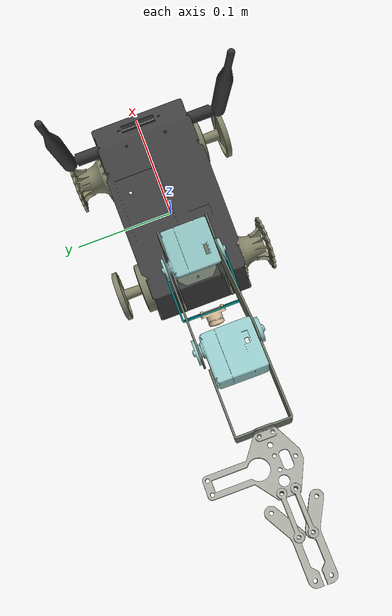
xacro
<?xml version='1.0' encoding='utf-8'?>
<robot xmlns:xacro="http://www.ros.org/wiki/xacro" name="jetank">

    <!-- ================= ARGUMENTS  ================== -->
    <xacro:arg name="namespace" default="jetank" />
    <!-- ================= PROPERTIES ================== -->

    <!-- constants -->
    <xacro:property name="PI" value="3.1415" />
    <xacro:property name="scale" value="0.001 0.001 0.001" />

    <!-- meshes -->
    <xacro:property name="base_link_mesh"               value="file://$(find jetank_description)/meshes/base_link.stl" />
    <xacro:property name="DRIVER_WHEEL_L_mesh"          value="file://$(find jetank_description)/meshes/DRIVER_WHEEL_L.stl" />
    <xacro:property name="DRIVER_WHEEL_R_mesh"          value="file://$(find jetank_description)/meshes/DRIVER_WHEEL_R.stl" />
    <xacro:property name="FREE_WHEEL_L_mesh"            value="file://$(find jetank_description)/meshes/FREE_WHEEL_L.stl" />
    <xacro:property name="FREE_WHEEL_R_mesh"            value="file://$(find jetank_description)/meshes/FREE_WHEEL_R.stl" />
    <xacro:property name="ARM_UPPER_mesh"               value="file://$(find jetank_description)/meshes/ARM_UPPER.stl" />
    <xacro:property name="ARM_MIDDLE_mesh"              value="file://$(find jetank_description)/meshes/ARM_MIDDLE.stl" />
    <xacro:property name="ARM_LOWER_mesh"               value="file://$(find jetank_description)/meshes/ARM_LOWER.stl" />
    <xacro:property name="ANTENNA_R_mesh"               value="file://$(find jetank_description)/meshes/ANTENNA_R.stl" />
    <xacro:property name="ANTENNA_L_mesh"               value="file://$(find jetank_description)/meshes/ANTENNA_L.stl" />
    <xacro:property name="GRIPPER_BASE_mesh"            value="file://$(find jetank_description)/meshes/GRIPPER_BASE.stl" />
    <xacro:property name="GRIPPER_L1_mesh"              value="file://$(find jetank_description)/meshes/GRIPPER_L1.stl" />
    <xacro:property name="GRIPPER_L2_mesh"              value="file://$(find jetank_description)/meshes/GRIPPER_L2.stl" />
    <xacro:property name="GRIPPER_R1_mesh"              value="file://$(find jetank_description)/meshes/GRIPPER_R1.stl" />
    <xacro:property name="GRIPPER_R2_mesh"              value="file://$(find jetank_description)/meshes/GRIPPER_R2.stl" />
    <xacro:property name="SERVO_UPPER_mesh"             value="file://$(find jetank_description)/meshes/SERVO_UPPER.stl" />
    <xacro:property name="SERVO_LOWER_mesh"             value="file://$(find jetank_description)/meshes/SERVO_LOWER.stl" />
    <xacro:property name="CATERPILLAR_TRACER_L_mesh"    value="file://$(find jetank_description)/meshes/CATERPILLAR_TRACER_L.stl" />
    <xacro:property name="CAMERA_mesh"                  value="file://$(find jetank_description)/meshes/CAMERA.stl" />
    <xacro:property name="CAMERA_HOLDER_mesh"           value="file://$(find jetank_description)/meshes/CAM_HOLDER.stl" />
    <xacro:property name="BEARING_mesh"                 value="file://$(find jetank_description)/meshes/BEARING.stl" />

    <!-- materials -->
    <!-- format: [red green blue alpha] -->
    <xacro:property name="base_link_material"               value="0.25 0.25 0.25 1" />
    <xacro:property name="DRIVER_WHEEL_L_material"          value="0.5 0.5 0.4 1" />
    <xacro:property name="DRIVER_WHEEL_R_material"          value="0.5 0.5 0.4 1" />
    <xacro:property name="FREE_WHEEL_L_material"            value="0.5 0.5 0.4 1" />
    <xacro:property name="FREE_WHEEL_R_material"            value="0.5 0.5 0.4 1" />
    <xacro:property name="ARM_UPPER_material"               value="0.41 0.45 0.39 1" />
    <xacro:property name="ARM_MIDDLE_material"              value="0.41 0.45 0.39 1" />
    <xacro:property name="ARM_LOWER_material"               value="0.41 0.45 0.39 1" />
    <xacro:property name="ANTENNA_R_material"               value="0.2 0.2 0.2 1" />
    <xacro:property name="ANTENNA_L_material"               value="0.2 0.2 0.2 1" />
    <xacro:property name="GRIPPER_BASE_material"            value="0.65 0.65 0.62 1" />
    <xacro:property name="GRIPPER_L1_material"              value="0.65 0.65 0.62 1" />
    <xacro:property name="GRIPPER_L2_material"              value="0.65 0.65 0.62 1" />
    <xacro:property name="GRIPPER_R1_material"              value="0.65 0.65 0.62 1" />
    <xacro:property name="GRIPPER_R2_material"              value="0.65 0.65 0.62 1" />
    <xacro:property name="SERVO_UPPER_material"             value="0.58 0.78 0.78 1" />
    <xacro:property name="SERVO_LOWER_material"             value="0.58 0.78 0.78 1" />
    <xacro:property name="CATERPILLAR_TRACER_L_material"    value="0 0 0 0" />
    <xacro:property name="CAMERA_material"                  value="0.84 0.74 0.60 1" />
    <xacro:property name="CAMERA_HOLDER_material"           value="0.0 0.5 0.5 1" />
    <xacro:property name="BEARING_material"                 value="0.67 0.74 0.67 1" />

    <!-- mass -->
    <xacro:property name="base_link_mass"               value="0.7639308708503839" />
    <xacro:property name="DRIVER_WHEEL_L_mass"          value="0.1049698213829899" />
    <xacro:property name="DRIVER_WHEEL_R_mass"          value="0.1049698213829899" />
    <xacro:property name="FREE_WHEEL_L_mass"            value="0.1148888948541452" />
    <xacro:property name="FREE_WHEEL_R_mass"            value="0.1148888948541518" />
    <xacro:property name="ARM_UPPER_mass"               value="0.0356576139610492" />
    <xacro:property name="ARM_MIDDLE_mass"              value="0.0618639746492046" />
    <xacro:property name="ARM_LOWER_mass"               value="0.1036438493797283" />
    <xacro:property name="ANTENNA_R_mass"               value="0.1712590340150528" />
    <xacro:property name="ANTENNA_L_mass"               value="0.1712590340150529" />
    <xacro:property name="GRIPPER_BASE_mass"            value="0.0366550366587098" />
    <xacro:property name="GRIPPER_L1_mass"              value="0.0062442558314246" />
    <xacro:property name="GRIPPER_L2_mass"              value="0.0214602758599241" />
    <xacro:property name="GRIPPER_R1_mass"              value="0.0062442558314246" />
    <xacro:property name="GRIPPER_R2_mass"              value="0.0214602758599390" />
    <xacro:property name="SERVO_UPPER_mass"             value="0.2098216132647201" />
    <xacro:property name="SERVO_LOWER_mass"             value="0.2098216132647196" />
    <xacro:property name="CATERPILLAR_TRACER_L_mass"    value="0" />
    <xacro:property name="CAMERA_mass"                  value="0.0191770974259580" />
    <xacro:property name="CAMERA_HOLDER_mass"           value="0.0432050856643130" />
    <xacro:property name="BEARING_mass"                 value="0.0558921120705775" />

    <!-- link_type -->
    <xacro:property name="base_link_link_type"          value="box"/>
    <xacro:property name="ARM_UPPER_link_type"          value="box"/>
    <xacro:property name="ARM_MIDDLE_link_type"         value="box"/>
    <xacro:property name="ARM_LOWER_link_type"          value="cylinder"/>
    <xacro:property name="DRIVER_WHEEL_L_link_type"     value="cylinder"/>
    <xacro:property name="DRIVER_WHEEL_R_link_type"     value="cylinder"/>
    <xacro:property name="FREE_WHEEL_L_link_type"       value="cylinder"/>
    <xacro:property name="FREE_WHEEL_R_link_type"       value="cylinder"/>
    <xacro:property name="CAMERA_link_type"             value="box"/>
    <xacro:property name="CAMERA_HOLDER_link_type"      value="cylinder"/>
    <xacro:property name="BEARING_link_type"            value="cylinder"/>
    <xacro:property name="ANTENNA_L_link_type"          value="cylinder"/>
    <xacro:property name="ANTENNA_R_link_type"          value="cylinder"/>
    <xacro:property name="SERVO_UPPER_link_type"        value="box"/>
    <xacro:property name="SERVO_LOWER_link_type"        value="box"/>
    <xacro:property name="GRIPPER_BASE_link_type"       value="box"/>
    <xacro:property name="GRIPPER_L1_link_type"         value="mesh"/>
    <xacro:property name="GRIPPER_L2_link_type"         value="mesh"/>
    <xacro:property name="GRIPPER_R1_link_type"         value="mesh"/>
    <xacro:property name="GRIPPER_R2_link_type"         value="mesh"/>

    <!-- link_dim [x , y, z] -->
    <!--
        Describes the dimensions of the shape of the link.
    -->
    <!-- if link_type == cylinder => ${LINK_NAME}_dim[2] will be ignored -->
    <!-- if link_type == cylinder => ${LINK_NAME}_dim[0] == length and ${LINK_NAME}_dim[1] == radius -->
    <xacro:property name="base_link_dim"          value="${[0.2,  0.1,  0.065]}"/>
    <xacro:property name="ARM_UPPER_dim"          value="${[0.05,  0.005,  0.05]}"/>
    <xacro:property name="ARM_MIDDLE_dim"         value="${[0.115,  0.005,  0.05]}"/>
    <xacro:property name="ARM_LOWER_dim"          value="${[0.06,  0.02,  0.0]}"/>
    <xacro:property name="DRIVER_WHEEL_L_dim"     value="${[0.025,  0.025,  0.0]}"/>
    <xacro:property name="DRIVER_WHEEL_R_dim"     value="${[0.025,  0.025,  0.0]}"/>
    <xacro:property name="FREE_WHEEL_L_dim"       value="${[0.025,  0.025,  0.0]}"/>
    <xacro:property name="FREE_WHEEL_R_dim"       value="${[0.025,  0.025,  0.0]}"/>
    <xacro:property name="CAMERA_dim"             value="${[0.01,  0.01,  0.01]}"/>
    <xacro:property name="CAMERA_HOLDER_dim"      value="${[0.05,  0.02,  0]}"/>
    <xacro:property name="BEARING_dim"            value="${[0.02,  0.025,  0.0]}"/>
    <xacro:property name="ANTENNA_L_dim"          value="${[0.15,  0.01,  0.0]}"/>
    <xacro:property name="ANTENNA_R_dim"          value="${[0.15,  0.01,  0.0]}"/>
    <xacro:property name="SERVO_UPPER_dim"        value="${[0.04,  0.04,  0.015]}"/>
    <xacro:property name="SERVO_LOWER_dim"        value="${[0.04,  0.04,  0.015]}"/>
    <xacro:property name="GRIPPER_BASE_dim"       value="${[0.04,  0.045,  0.005]}"/>
    <xacro:property name="GRIPPER_L1_dim"         value="${[0.0,  0.0,  0.0]}"/>
    <xacro:property name="GRIPPER_L2_dim"         value="${[0.0,  0.0,  0.0]}"/>
    <xacro:property name="GRIPPER_R1_dim"         value="${[0.0,  0.0,  0.0]}"/>
    <xacro:property name="GRIPPER_R2_dim"         value="${[0.0,  0.0,  0.0]}"/>

    <!-- collision_xyz_rpy [x , y, z,r ,p ,y] -->
    <!--
        Describes the position and orientation of the collision shape relative to the link.
    -->
    <xacro:property name="base_link_collision_xyz_rpy"      value="${[0, 0, 0.04, 0, 0, 0]}" />
    <xacro:property name="ARM_UPPER_collision_xyz_rpy"      value="${[-0.02, 0.001, -0.02, 0, 0, -PI/8]}" />
    <xacro:property name="ARM_MIDDLE_collision_xyz_rpy"     value="${[-0.04, 0.04, 0, 0, 0, -PI/4]}" />
    <xacro:property name="ARM_LOWER_collision_xyz_rpy"      value="${[-0.005, 0, 0.03, 0, 0, 0]}" />
    <xacro:property name="DRIVER_WHEEL_L_collision_xyz_rpy" value="${[0, 0, -0.02, 0, 0, 0]}" />
    <xacro:property name="DRIVER_WHEEL_R_collision_xyz_rpy" value="${[0, 0, -0.02, 0, 0, 0]}" />
    <xacro:property name="FREE_WHEEL_L_collision_xyz_rpy"   value="${[0, 0, -0.02, 0, 0, 0]}" />
    <xacro:property name="FREE_WHEEL_R_collision_xyz_rpy"   value="${[0, 0, -0.02, 0, 0, 0]}" />
    <xacro:property name="CAMERA_collision_xyz_rpy"         value="${[0, 0, 0, -PI, 0, 0]}" />
    <xacro:property name="CAMERA_HOLDER_collision_xyz_rpy"  value="${[-0.01, 0, 0, 5*PI/6, -PI/2, -5*PI/6]}" />
    <xacro:property name="BEARING_collision_xyz_rpy"        value="${[0, 0, 0, -PI, 0, 0]}" />
    <xacro:property name="ANTENNA_L_collision_xyz_rpy"      value="${[0,  0.08, -0.01, PI/2, 0, 0]}" />
    <xacro:property name="ANTENNA_R_collision_xyz_rpy"      value="${[0, -0.08, -0.01, PI/2, 0, 0]}" />
    <xacro:property name="SERVO_UPPER_collision_xyz_rpy"    value="${[-0.0125, 0, -0.0095, 0, -PI/8, 0]}" />
    <xacro:property name="SERVO_LOWER_collision_xyz_rpy"    value="${[-0.015, -0.004, 0.02, -PI/2, 0, PI]}" />
    <xacro:property name="GRIPPER_BASE_collision_xyz_rpy"   value="${[0.0175, 0, -0.0095, -PI/8, 0, -PI/2]}" />
    <xacro:property name="GRIPPER_L1_collision_xyz_rpy"     value="${[0, 0, 0, 0, 0, 0]}" />
    <xacro:property name="GRIPPER_L2_collision_xyz_rpy"     value="${[0, 0, 0, 0, 0, 0]}" />
    <xacro:property name="GRIPPER_R1_collision_xyz_rpy"     value="${[0, 0, 0, 0, 0, 0]}" />
    <xacro:property name="GRIPPER_R2_collision_xyz_rpy"     value="${[0, 0, 0, 0, 0, 0]}" />

    <!-- ================= INCLUDES ================== -->

    <xacro:include filename="jetank_links.xacro"  />
    <xacro:include filename="jetank_joints.xacro"  />
    <xacro:include filename="jetank_controllers.xacro"  />
    <xacro:include filename="jetank_sensors.xacro"  />

</robot>

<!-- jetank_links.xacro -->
<robot xmlns:xacro="http://www.ros.org/wiki/xacro" name="jetank">

    <xacro:macro name="links" params="name mesh material mass link_type dim_x:=0 dim_y:=0 dim_z:=0 collision_xyz collision_rpy *origin *inertial ">
        <link name="${name}">
            <visual name="${name}_visual">
                <xacro:insert_block name="origin"/>
                <geometry>
                    <mesh filename="${mesh}" scale="${scale}"/>
                </geometry>
                <material name="${name}_material">
                    <color rgba="${material}"/>
                </material>
            </visual>
            <collision name="${name}_collision">
                <xacro:if value="${ link_type == 'cylinder' }">
                    <origin xyz="${collision_xyz}" rpy="${collision_rpy}" />
                    <geometry>
                        <cylinder length="${dim_x}" radius="${dim_y}"/>
                    </geometry>
                </xacro:if>
                <xacro:if value="${ link_type == 'box' }">
                    <origin xyz="${collision_xyz}" rpy="${collision_rpy}" />
                    <geometry>
                        <box size="${dim_x} ${dim_y} ${dim_z}"/>
                    </geometry>
                </xacro:if>
                <xacro:if value="${ link_type == 'mesh' }">
                    <xacro:insert_block name="origin"/>
                    <geometry>
                        <mesh filename="${mesh}" scale="${scale}"/>
                    </geometry>
                </xacro:if>
            </collision>
            <xacro:insert_block name="inertial" />
        </link>
    </xacro:macro>

    <!-- ================= LINKS ================== -->

    <!-- base link -->
    <xacro:links name="base_link" mesh="${base_link_mesh}" material="${base_link_material}" mass="${base_link_mass}" link_type="${base_link_link_type}" dim_x="${base_link_dim[0]}" dim_y="${base_link_dim[1]}" dim_z="${base_link_dim[2]}" collision_xyz="${base_link_collision_xyz_rpy[0]} ${base_link_collision_xyz_rpy[1]} ${base_link_collision_xyz_rpy[2]}" collision_rpy="${base_link_collision_xyz_rpy[3]} ${base_link_collision_xyz_rpy[4]} ${base_link_collision_xyz_rpy[5]}">
        <origin xyz="0.0 0.0 0.0" rpy="0.0 0.0 0.0" />
        <inertial>
            <origin xyz="-0.0028864851424563968 0.0003605395998919554 0.03729152724217677"
                rpy="0.0 0.0 0.0" />
            <mass value="0.7639308708503839" />
            <inertia ixx="0.00150205741988797" iyy="0.003532242168965159" izz="0.003808278739772123"
                ixy="2.0200689378287296e-06" iyz="4.791503412361428e-06" ixz="5.068154904514763e-05" />
        </inertial>
    </xacro:links>

    <!-- arm -->
    <xacro:links name="ARM_UPPER" mesh="${ARM_UPPER_mesh}" material="${ARM_UPPER_material}" mass="${ARM_UPPER_mass}" link_type="${ARM_UPPER_link_type}" dim_x="${ARM_UPPER_dim[0]}" dim_y="${ARM_UPPER_dim[1]}" dim_z="${ARM_UPPER_dim[2]}"  collision_xyz="${ARM_UPPER_collision_xyz_rpy[0]} ${ARM_UPPER_collision_xyz_rpy[1]} ${ARM_UPPER_collision_xyz_rpy[2]}" collision_rpy="${ARM_UPPER_collision_xyz_rpy[3]} ${ARM_UPPER_collision_xyz_rpy[4]} ${ARM_UPPER_collision_xyz_rpy[5]}">
        <origin xyz="-0.042675603894513275 0.008004289658434232 -0.020301207430691776" rpy="0.22339825954275927 -1.556184340833111 -0.5813072278980501" />
        <inertial>
            <origin xyz="-0.022908278643665785 0.0006057553402017391 -0.01928712656788768"
                rpy="0.0 -4.220565730941431e-35 -6.162975822039156e-33" />
            <mass value="0.03565761396104929" />
            <inertia ixx="1.5443417400841932e-05" iyy="2.3764463595438004e-05"
                izz="1.3620194048359787e-05" ixy="3.625928097526083e-06"
                iyz="4.6051936175620323e-07" ixz="-1.1226347876157484e-06" />
        </inertial>
    </xacro:links>
    <xacro:links name="ARM_MIDDLE" mesh="${ARM_MIDDLE_mesh}" material="${ARM_MIDDLE_material}" mass="${ARM_MIDDLE_mass}" link_type="${ARM_MIDDLE_link_type}" dim_x="${ARM_MIDDLE_dim[0]}" dim_y="${ARM_MIDDLE_dim[1]}" dim_z="${ARM_MIDDLE_dim[2]}"  collision_xyz="${ARM_MIDDLE_collision_xyz_rpy[0]} ${ARM_MIDDLE_collision_xyz_rpy[1]} ${ARM_MIDDLE_collision_xyz_rpy[2]}" collision_rpy="${ARM_MIDDLE_collision_xyz_rpy[3]} ${ARM_MIDDLE_collision_xyz_rpy[4]} ${ARM_MIDDLE_collision_xyz_rpy[5]}">
        <origin xyz="-0.0335092778226662 0.03363301371186834 -0.021602684974064732" rpy="-3.137540926469612 -0.0010856452132872892 -0.7854003629070162" />
        <inertial>
            <origin xyz="-0.03358748266767387 0.03358762804395098 -5.157163600578385e-05"
                rpy="0.0 2.407412430484311e-35 1.2161079430919492e-49" />
            <mass value="0.06186397464920469" />
            <inertia ixx="6.497179907917266e-05" iyy="6.497176903594811e-05"
                izz="6.838533670855049e-05" ixy="3.117958759744717e-05" iyz="1.061073116136028e-07"
                ixz="5.2995547323661035e-08" />
        </inertial>
    </xacro:links>
    <xacro:links name="ARM_LOWER" mesh="${ARM_LOWER_mesh}" material="${ARM_LOWER_material}" mass="${ARM_LOWER_mass}" link_type="${ARM_LOWER_link_type}" dim_x="${ARM_LOWER_dim[0]}" dim_y="${ARM_LOWER_dim[1]}" dim_z="${ARM_LOWER_dim[2]}"  collision_xyz="${ARM_LOWER_collision_xyz_rpy[0]} ${ARM_LOWER_collision_xyz_rpy[1]} ${ARM_LOWER_collision_xyz_rpy[2]}" collision_rpy="${ARM_LOWER_collision_xyz_rpy[3]} ${ARM_LOWER_collision_xyz_rpy[4]} ${ARM_LOWER_collision_xyz_rpy[5]}">
        <origin xyz="-0.02591983001797696 9.101096039885847e-05 0.0015000976949900147" rpy="-0.00209732879072002 -3.809593605879156e-06 3.137959984463745" />
        <inertial>
            <origin xyz="-0.01064722156754466 -5.485356628246008e-05 0.029442007866704572"
                rpy="4.814824860968091e-35 -0.0 3.2073176521106348e-49" />
            <mass value="0.1036438493797283" />
            <inertia ixx="8.81458213535141e-05" iyy="7.950393953510494e-05"
                izz="7.219884111762218e-05" ixy="4.6845951821403056e-08" iyz="2.258742793083176e-07"
                ixz="-2.334825910280157e-06" />
        </inertial>
    </xacro:links>

    <!-- wheels -->
    <xacro:links name="DRIVER_WHEEL_L" mesh="${DRIVER_WHEEL_L_mesh}" material="${DRIVER_WHEEL_L_material}" mass="${DRIVER_WHEEL_L_mass}" link_type="${DRIVER_WHEEL_L_link_type}" dim_x="${DRIVER_WHEEL_L_dim[0]}" dim_y="${DRIVER_WHEEL_L_dim[1]}" dim_z="${DRIVER_WHEEL_L_dim[2]}"  collision_xyz="${DRIVER_WHEEL_L_collision_xyz_rpy[0]} ${DRIVER_WHEEL_L_collision_xyz_rpy[1]} ${DRIVER_WHEEL_L_collision_xyz_rpy[2]}" collision_rpy="${DRIVER_WHEEL_L_collision_xyz_rpy[3]} ${DRIVER_WHEEL_L_collision_xyz_rpy[4]} ${DRIVER_WHEEL_L_collision_xyz_rpy[5]}">
        <origin xyz="1.452944835456549e-05 -8.388494253024348e-06 -0.003999967103401225" rpy="0.5236006817835094 -1.566601673837709 2.617991971944676" />
        <inertial>
            <origin xyz="6.909868758699923e-05 -5.0523203168468815e-05 -0.019021631303903268"
                rpy="0.0 1.8570051196622238e-34 0.0" />
            <mass value="0.10496982138298995" />
            <inertia ixx="2.2560499003626737e-05" iyy="2.251410282101856e-05"
                izz="2.4612100281121576e-05" ixy="-5.694123753574936e-11"
                iyz="1.5726877697940232e-08" ixz="-7.452984821786984e-09" />
        </inertial>
    </xacro:links>
    <xacro:links name="DRIVER_WHEEL_R" mesh="${DRIVER_WHEEL_R_mesh}" material="${DRIVER_WHEEL_R_material}" mass="${DRIVER_WHEEL_R_mass}" link_type="${DRIVER_WHEEL_R_link_type}" dim_x="${DRIVER_WHEEL_R_dim[0]}" dim_y="${DRIVER_WHEEL_R_dim[1]}" dim_z="${DRIVER_WHEEL_R_dim[2]}"  collision_xyz="${DRIVER_WHEEL_R_collision_xyz_rpy[0]} ${DRIVER_WHEEL_R_collision_xyz_rpy[1]} ${DRIVER_WHEEL_R_collision_xyz_rpy[2]}" collision_rpy="${DRIVER_WHEEL_R_collision_xyz_rpy[3]} ${DRIVER_WHEEL_R_collision_xyz_rpy[4]} ${DRIVER_WHEEL_R_collision_xyz_rpy[5]}">
        <origin xyz="-1.4501981486878535e-05 -8.391092988526694e-06 -0.003999964535501115" rpy="-0.5236006818924672 -1.5666016738377524 0.52360068175411" />
        <inertial>
            <origin xyz="-6.909654809962084e-05 -2.9269046357853768e-05 -0.019021673226760922"
                rpy="0.0 -6.360951486702456e-35 0.0" />
            <mass value="0.1049698213829899" />
            <inertia ixx="2.2560499004256008e-05" iyy="2.251400779881374e-05"
                izz="2.4612195302702004e-05" ixy="-2.5324020125478572e-11"
                iyz="-6.925989762745856e-09" ixz="7.453243651668403e-09" />
        </inertial>
    </xacro:links>
    <xacro:links name="FREE_WHEEL_L" mesh="${FREE_WHEEL_L_mesh}" material="${FREE_WHEEL_L_material}" mass="${FREE_WHEEL_L_mass}" link_type="${FREE_WHEEL_L_link_type}" dim_x="${FREE_WHEEL_L_dim[0]}" dim_y="${FREE_WHEEL_L_dim[1]}" dim_z="${FREE_WHEEL_L_dim[2]}"  collision_xyz="${FREE_WHEEL_L_collision_xyz_rpy[0]} ${FREE_WHEEL_L_collision_xyz_rpy[1]} ${FREE_WHEEL_L_collision_xyz_rpy[2]}" collision_rpy="${FREE_WHEEL_L_collision_xyz_rpy[3]} ${FREE_WHEEL_L_collision_xyz_rpy[4]} ${FREE_WHEEL_L_collision_xyz_rpy[5]}">
        <origin xyz="5.322111004383068e-05 -3.072566262244614e-05 -0.014649873776578809" rpy="1.5686679065776332 -0.003614548455738382 0.008580194849726693" />
        <inertial>
            <origin xyz="4.913425615981737e-05 -2.8359849328207787e-05 -0.01352728007660148"
                rpy="0.0 1.8570051196622238e-34 0.0" />
            <mass value="0.11488889485414525" />
            <inertia ixx="4.0681765416765274e-05" iyy="4.068201157526234e-05"
                izz="4.0263672111597786e-05" ixy="3.7418240329583945e-12"
                iyz="-8.518904315297003e-10" ixz="1.5048848574955645e-09" />
        </inertial>
    </xacro:links>
    <xacro:links name="FREE_WHEEL_R" mesh="${FREE_WHEEL_R_mesh}" material="${FREE_WHEEL_R_material}" mass="${FREE_WHEEL_R_mass}" link_type="${FREE_WHEEL_R_link_type}" dim_x="${FREE_WHEEL_R_dim[0]}" dim_y="${FREE_WHEEL_R_dim[1]}" dim_z="${FREE_WHEEL_R_dim[2]}"  collision_xyz="${FREE_WHEEL_R_collision_xyz_rpy[0]} ${FREE_WHEEL_R_collision_xyz_rpy[1]} ${FREE_WHEEL_R_collision_xyz_rpy[2]}" collision_rpy="${FREE_WHEEL_R_collision_xyz_rpy[3]} ${FREE_WHEEL_R_collision_xyz_rpy[4]} ${FREE_WHEEL_R_collision_xyz_rpy[5]}">
        <origin xyz="3.8144482055946226e-05 2.2017392292781324e-05 0.01049990762224918" rpy="1.5686989841660284 0.003632669359659834 -3.8096197296224606e-06" />
        <inertial>
            <origin xyz="-4.91456850747074e-05 -2.8363712536370045e-05 -0.013527277364732724"
                rpy="0.0 -6.360951486702456e-35 0.0" />
            <mass value="0.11488889485415185" />
            <inertia ixx="4.0681765245256105e-05" iyy="4.0682011546281835e-05"
                izz="4.0263672312089414e-05" ixy="-3.654323655849692e-13"
                iyz="-8.517839320012789e-10" ixz="-1.5325482430441093e-09" />
        </inertial>
    </xacro:links>

    <!-- camera -->
    <xacro:links name="CAMERA" mesh="${CAMERA_mesh}" material="${CAMERA_material}" mass="${CAMERA_mass}" link_type="${CAMERA_link_type}" dim_x="${CAMERA_dim[0]}" dim_y="${CAMERA_dim[1]}" dim_z="${CAMERA_dim[2]}"  collision_xyz="${CAMERA_collision_xyz_rpy[0]} ${CAMERA_collision_xyz_rpy[1]} ${CAMERA_collision_xyz_rpy[2]}" collision_rpy="${CAMERA_collision_xyz_rpy[3]} ${CAMERA_collision_xyz_rpy[4]} ${CAMERA_collision_xyz_rpy[5]}">
        <origin xyz="-4.481242470433245e-09 -2.2840283131486673e-09 3.780146231591175e-09" rpy="-3.139495324799226 ${-3.8095938720097817e-06} 0.003632669126105752" />
        <inertial>
            <origin xyz="-0.005467113295410968 -4.792118534928669e-06 0.0028147721817248163"
                rpy="0.0 -0.0 -1.1739041031382518e-47" />
            <mass value="0.019177097425958016" />
            <inertia ixx="1.2125641079973622e-06" iyy="1.0782087605613606e-06"
                izz="9.171773161657565e-07" ixy="1.5309653202804099e-09"
                iyz="-1.0748684910103616e-10" ixz="2.0956885269530622e-07" />
        </inertial>
    </xacro:links>

    <xacro:links name="CAM_HOLDER" mesh="${CAMERA_HOLDER_mesh}" material="${CAMERA_HOLDER_material}" mass="${CAMERA_HOLDER_mass}" link_type="${CAMERA_HOLDER_link_type}" dim_x="${CAMERA_HOLDER_dim[0]}" dim_y="${CAMERA_HOLDER_dim[1]}" dim_z="${CAMERA_HOLDER_dim[2]}"  collision_xyz="${CAMERA_HOLDER_collision_xyz_rpy[0]} ${CAMERA_HOLDER_collision_xyz_rpy[1]} ${CAMERA_HOLDER_collision_xyz_rpy[2]}" collision_rpy="${CAMERA_HOLDER_collision_xyz_rpy[3]} ${CAMERA_HOLDER_collision_xyz_rpy[4]} ${CAMERA_HOLDER_collision_xyz_rpy[5]}">
        <origin xyz="-0.033848894481244764 1.262198380391766e-07 -0.00012296228401156072" rpy="2.6179919438508934 -1.5666016740396613 -2.617991943988682" />
        <inertial>
            <origin xyz="-0.022309879542198107 1.7398627940234946e-06 -8.10411995800453e-05"
                rpy="0.0 -2.0981802744010314e-34 -1.88079096131566e-37" />
            <mass value="0.04320508566431304" />
            <inertia ixx="2.5816875300630775e-05" iyy="3.164288509735364e-05"
                izz="1.2443592739336833e-05" ixy="7.560146391039103e-10"
                iyz="4.0270847025312724e-08" ixz="4.858356482648958e-08" />
        </inertial>
    </xacro:links>

    <!-- bearing -->
    <xacro:links name="BEARING" mesh="${BEARING_mesh}" material="${BEARING_material}" mass="${BEARING_mass}" link_type="${BEARING_link_type}" dim_x="${BEARING_dim[0]}" dim_y="${BEARING_dim[1]}" dim_z="${BEARING_dim[2]}"  collision_xyz="${BEARING_collision_xyz_rpy[0]} ${BEARING_collision_xyz_rpy[1]} ${BEARING_collision_xyz_rpy[2]}" collision_rpy="${BEARING_collision_xyz_rpy[3]} ${BEARING_collision_xyz_rpy[4]} ${BEARING_collision_xyz_rpy[5]}">
        <origin xyz="5.430652114668533e-09 -5.599776194038509e-06 0.0026699942169905724" rpy="-3.1394953247999835 -3.809593613640393e-06 0.0036326691260505526" />
        <inertial>
            <origin xyz="-1.4377769774753802e-08 5.306325474567775e-06 -0.0025299943110332545"
                rpy="0.0 -0.0 -8.784755544884209e-38" />
            <mass value="0.05589211207057759" />
            <inertia ixx="9.015512369875424e-06" iyy="9.015545628046614e-06"
                izz="1.657627265380158e-05" ixy="-6.040612411177808e-14"
                iyz="-1.585742346699663e-08" ixz="2.880142248182665e-11" />
        </inertial>
    </xacro:links>

    <!-- antennas -->
    <xacro:links name="ANTENNA_L" mesh="${ANTENNA_L_mesh}" material="${ANTENNA_L_material}" mass="${ANTENNA_L_mass}" link_type="${ANTENNA_L_link_type}" dim_x="${ANTENNA_L_dim[0]}" dim_y="${ANTENNA_L_dim[1]}" dim_z="${ANTENNA_L_dim[2]}"  collision_xyz="${ANTENNA_L_collision_xyz_rpy[0]} ${ANTENNA_L_collision_xyz_rpy[1]} ${ANTENNA_L_collision_xyz_rpy[2]}" collision_rpy="${ANTENNA_L_collision_xyz_rpy[3]} ${ANTENNA_L_collision_xyz_rpy[4]} ${ANTENNA_L_collision_xyz_rpy[5]}">
        <origin xyz="0.012558233063349657 -0.006064954690762062 -0.030941931787802295" rpy="0.5236006817820806 -1.566601673837696 2.6179919719464855" />
        <inertial>
            <origin xyz="0.00010428589158372858 0.05125494812152533 -0.028760898470254075"
                rpy="0.0 1.8570051196622238e-34 0.0" />
            <mass value="0.1712590340150529" />
            <inertia ixx="0.000314068362815308" iyy="1.1348965126681299e-05"
                izz="0.0003064181988690546" ixy="-7.600553009246833e-08"
                iyz="2.1240148373447467e-05" ixz="2.77100862291307e-08" />
        </inertial>
    </xacro:links>
    <xacro:links name="ANTENNA_R" mesh="${ANTENNA_R_mesh}" material="${ANTENNA_R_material}" mass="${ANTENNA_R_mass}" link_type="${ANTENNA_R_link_type}" dim_x="${ANTENNA_R_dim[0]}" dim_y="${ANTENNA_R_dim[1]}" dim_z="${ANTENNA_R_dim[2]}"  collision_xyz="${ANTENNA_R_collision_xyz_rpy[0]} ${ANTENNA_R_collision_xyz_rpy[1]} ${ANTENNA_R_collision_xyz_rpy[2]}" collision_rpy="${ANTENNA_R_collision_xyz_rpy[3]} ${ANTENNA_R_collision_xyz_rpy[4]} ${ANTENNA_R_collision_xyz_rpy[5]}">
        <origin xyz="-0.00011258950982521831 -0.006064999678879916 -0.030987146017140126" rpy="-0.523600702813549 -1.5666016737795367 0.5236007026751052" />
        <inertial>
            <origin xyz="-0.00010388848222362413 -0.05137513349335263 -0.028545652272082785"
                rpy="0.0 -6.360951486702456e-35 0.0" />
            <mass value="0.17125903401505282" />
            <inertia ixx="0.00031406836395675376" iyy="1.117596753400613e-05"
                izz="0.00030659119532028506" ixy="-7.381378770492805e-08"
                iyz="-2.0001701262118792e-05" ixz="-2.723875833525843e-08" />
        </inertial>
    </xacro:links>

    <!-- servos -->
    <xacro:links name="SERVO_UPPER" mesh="${SERVO_UPPER_mesh}" material="${SERVO_UPPER_material}" mass="${SERVO_UPPER_mass}" link_type="${SERVO_UPPER_link_type}" dim_x="${SERVO_UPPER_dim[0]}" dim_y="${SERVO_UPPER_dim[1]}" dim_z="${SERVO_UPPER_dim[2]}"  collision_xyz="${SERVO_UPPER_collision_xyz_rpy[0]} ${SERVO_UPPER_collision_xyz_rpy[1]} ${SERVO_UPPER_collision_xyz_rpy[2]}" collision_rpy="${SERVO_UPPER_collision_xyz_rpy[3]} ${SERVO_UPPER_collision_xyz_rpy[4]} ${SERVO_UPPER_collision_xyz_rpy[5]}">
        <origin xyz="-0.005884888244401978 0.002005539666205546 -0.01282565966177529" rpy="-3.139353401733166 -0.35794030259148174 0.002848163431076057" />
        <inertial>
            <origin xyz="-0.008710205981769175 -0.0008931796940865167 -0.0032610178523219346"
                rpy="0.0 -0.0 8.152758619563242e-34" />
            <mass value="0.20982161326472018" />
            <inertia ixx="3.914539867865734e-05" iyy="3.5263719700624594e-05"
                izz="5.518967950991577e-05" ixy="-3.681143850732295e-07"
                iyz="-2.158225678133891e-07" ixz="-6.978918972026999e-06" />
        </inertial>
    </xacro:links>
    <xacro:links name="SERVO_LOWER" mesh="${SERVO_LOWER_mesh}" material="${SERVO_LOWER_material}" mass="${SERVO_LOWER_mass}" link_type="${SERVO_LOWER_link_type}" dim_x="${SERVO_LOWER_dim[0]}" dim_y="${SERVO_LOWER_dim[1]}" dim_z="${SERVO_LOWER_dim[2]}"  collision_xyz="${SERVO_LOWER_collision_xyz_rpy[0]} ${SERVO_LOWER_collision_xyz_rpy[1]} ${SERVO_LOWER_collision_xyz_rpy[2]}" collision_rpy="${SERVO_LOWER_collision_xyz_rpy[3]} ${SERVO_LOWER_collision_xyz_rpy[4]} ${SERVO_LOWER_collision_xyz_rpy[5]}">
        <origin xyz="-0.017088390888296067 0.009918027624157234 0.01882732151779485" rpy="-1.5728936694252873 0.0036326691260359155 3.1415888439710504" />
        <inertial>
            <origin xyz="-0.01778076329454675 -3.6698115345306094e-05 0.01751711641612725"
                rpy="0.0 -0.0 5.473822126268817e-48" />
            <mass value="0.20982161326471963" />
            <inertia ixx="3.6529219753117384e-05" iyy="5.780064634567519e-05"
                izz="3.5268927790314385e-05" ixy="-1.2716158555447347e-09"
                iyz="4.7018874707341185e-08" ixz="4.283700030945317e-07" />
        </inertial>
    </xacro:links>

    <!-- gripper -->
    <xacro:links name="GRIPPER_BASE" mesh="${GRIPPER_BASE_mesh}" material="${GRIPPER_BASE_material}" mass="${GRIPPER_BASE_mass}" link_type="${GRIPPER_BASE_link_type}" dim_x="${GRIPPER_BASE_dim[0]}" dim_y="${GRIPPER_BASE_dim[1]}" dim_z="${GRIPPER_BASE_dim[2]}"  collision_xyz="${GRIPPER_BASE_collision_xyz_rpy[0]} ${GRIPPER_BASE_collision_xyz_rpy[1]} ${GRIPPER_BASE_collision_xyz_rpy[2]}" collision_rpy="${GRIPPER_BASE_collision_xyz_rpy[3]} ${GRIPPER_BASE_collision_xyz_rpy[4]} ${GRIPPER_BASE_collision_xyz_rpy[5]}">
        <origin xyz="0.017997217528542855 4.248560344255803e-05 -0.005469218003321004" rpy="-0.3748566771788548 -0.0020355939143487573 -1.5671286856792996" />
        <inertial>
            <origin xyz="0.018711205204747332 0.007640083665599069 -0.007388532023619128"
                rpy="0.0 -3.469446951953614e-18 -1.6155871338926322e-27" />
            <mass value="0.0366550366587098" />
            <inertia ixx="1.2285515330750476e-05" iyy="6.94612066955528e-06"
                izz="1.715774480621983e-05" ixy="-9.121676749908667e-07"
                iyz="3.9753185062321765e-07" ixz="2.272496699844335e-06" />
        </inertial>
    </xacro:links>
    <xacro:links name="GRIPPER_L1" mesh="${GRIPPER_L1_mesh}" material="${GRIPPER_L1_material}" mass="${GRIPPER_L1_mass}" link_type="${GRIPPER_L1_link_type}" dim_x="${GRIPPER_L1_dim[0]}" dim_y="${GRIPPER_L1_dim[1]}" dim_z="${GRIPPER_L1_dim[2]}"  collision_xyz="${GRIPPER_L1_collision_xyz_rpy[0]} ${GRIPPER_L1_collision_xyz_rpy[1]} ${GRIPPER_L1_collision_xyz_rpy[2]}" collision_rpy="${GRIPPER_L1_collision_xyz_rpy[3]} ${GRIPPER_L1_collision_xyz_rpy[4]} ${GRIPPER_L1_collision_xyz_rpy[5]}">
        <origin xyz="-0.011947302972329262 -2.0470283309416138e-05 -0.010874872369057797" rpy="-0.0022392674104247065 0.3579393353524086 -3.1387444878467536" />
        <inertial>
            <origin xyz="-0.012998250088038078 -3.0306803820455697e-05 -0.008065030577021126"
                rpy="0.0 -0.0 0.0" />
            <mass value="0.0062442558314246485" />
            <inertia ixx="2.2945298088091447e-07" iyy="9.557086105196205e-07"
                izz="7.526842531313375e-07" ixy="-2.161025306364326e-09"
                iyz="-4.008141477858269e-10" ixz="-2.2755649847891381e-07" />
        </inertial>
    </xacro:links>
    <xacro:links name="GRIPPER_L2" mesh="${GRIPPER_L2_mesh}" material="${GRIPPER_L2_material}" mass="${GRIPPER_L2_mass}" link_type="${GRIPPER_L2_link_type}" dim_x="${GRIPPER_L2_dim[0]}" dim_y="${GRIPPER_L2_dim[1]}" dim_z="${GRIPPER_L2_dim[2]}"  collision_xyz="${GRIPPER_L2_collision_xyz_rpy[0]} ${GRIPPER_L2_collision_xyz_rpy[1]} ${GRIPPER_L2_collision_xyz_rpy[2]}" collision_rpy="${GRIPPER_L2_collision_xyz_rpy[3]} ${GRIPPER_L2_collision_xyz_rpy[4]} ${GRIPPER_L2_collision_xyz_rpy[5]}">
        <origin xyz="0.003188025644908059 -2.9460874184410457e-05 0.008523209934978624" rpy="0.002239267410431555 0.35793933535233774 -0.0028481657430385345" />
        <inertial>
            <origin xyz="-0.0012296239530053298 0.0039691186133053915 0.0036766615181430496"
                rpy="0.0 -0.0 0.0" />
            <mass value="0.02146027585992414" />
            <inertia ixx="1.2266606930363098e-06" iyy="6.125907172840806e-06"
                izz="5.756214866640529e-06" ixy="-9.873904819377294e-07"
                iyz="3.6806864768416604e-07" ixz="1.9653297004488396e-06" />
        </inertial>
    </xacro:links>
    <xacro:links name="GRIPPER_R1" mesh="${GRIPPER_R1_mesh}" material="${GRIPPER_R1_material}" mass="${GRIPPER_R1_mass}" link_type="${GRIPPER_R1_link_type}" dim_x="${GRIPPER_R1_dim[0]}" dim_y="${GRIPPER_R1_dim[1]}" dim_z="${GRIPPER_R1_dim[2]}"  collision_xyz="${GRIPPER_R1_collision_xyz_rpy[0]} ${GRIPPER_R1_collision_xyz_rpy[1]} ${GRIPPER_R1_collision_xyz_rpy[2]}" collision_rpy="${GRIPPER_R1_collision_xyz_rpy[3]} ${GRIPPER_R1_collision_xyz_rpy[4]} ${GRIPPER_R1_collision_xyz_rpy[5]}">
        <origin xyz="-0.01194722862140111 -2.0523049998069087e-05 -0.010874850394411446" rpy="-0.002239267410441002 0.3579393353523948 -3.1387444878468265" />
        <inertial>
            <origin xyz="-0.012998246756733707 -3.0304779780740975e-05 -0.008065027151216597"
                rpy="0.0 -0.0 0.0" />
            <mass value="0.006244255831424673" />
            <inertia ixx="2.294529808805892e-07" iyy="9.557086105191868e-07"
                izz="7.526842531311207e-07" ixy="-2.1610253063812667e-09"
                iyz="-4.008141478629069e-10" ixz="-2.2755649847891381e-07" />
        </inertial>
    </xacro:links>
    <xacro:links name="GRIPPER_R2" mesh="${GRIPPER_R2_mesh}" material="${GRIPPER_R2_material}" mass="${GRIPPER_R2_mass}" link_type="${GRIPPER_R2_link_type}" dim_x="${GRIPPER_R2_dim[0]}" dim_y="${GRIPPER_R2_dim[1]}" dim_z="${GRIPPER_R2_dim[2]}"  collision_xyz="${GRIPPER_R2_collision_xyz_rpy[0]} ${GRIPPER_R2_collision_xyz_rpy[1]} ${GRIPPER_R2_collision_xyz_rpy[2]}" collision_rpy="${GRIPPER_R2_collision_xyz_rpy[3]} ${GRIPPER_R2_collision_xyz_rpy[4]} ${GRIPPER_R2_collision_xyz_rpy[5]}">
        <origin xyz="0.002101980241199648 1.9421618867496714e-05 -0.005619691253464972" rpy="0.0022392674104621166 -0.3579393353523876 0.002848165742967234" />
        <inertial>
            <origin xyz="-0.0012584873319152834 0.003975470401698931 -0.0036599972005064174"
                rpy="0.0 -0.0 -6.018531076210082e-35" />
            <mass value="0.021460275859939086" />
            <inertia ixx="1.2412063985862897e-06" iyy="6.1145027700224355e-06"
                izz="5.753073563923234e-06" ixy="-1.0146443397531036e-06"
                iyz="-3.808193345589322e-07" ixz="-1.9668082650145446e-06" />
        </inertial>
    </xacro:links>

</robot>

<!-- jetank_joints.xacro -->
<robot xmlns:xacro="http://www.ros.org/wiki/xacro" name="jetank">

    <xacro:macro name="joint" params="joint_name parent_name child_name joint_type *origin *axis *limit">
        <joint name="${joint_name}" type="${joint_type}">
            <parent link="${parent_name}" />
            <child link="${child_name}" />
            <xacro:insert_block name="origin"/>

            <xacro:if value="${ joint_type == 'revolute' or joint_type == 'continuous' }">
                <xacro:insert_block name="axis"/>
            </xacro:if>

            <xacro:if value="${ joint_type == 'revolute' }">
                <xacro:insert_block name="limit"/>
            </xacro:if>

        </joint>
    </xacro:macro>

    <!-- ================ JOINTS ================ -->

    <!-- SERVO's -->
    <xacro:joint joint_name="turn_ARM" parent_name="BEARING" child_name="ARM_LOWER" joint_type="revolute">
        <origin xyz="0 0.0002 -0.0080" rpy="${PI} 0 0" />
        <axis xyz="0 -0.0021 1" />
        <limit lower="-${PI/2}" upper="${PI/2}" effort="50" velocity="10" />
    </xacro:joint>
    <xacro:joint joint_name="SERVO_UPPER_" parent_name="ARM_MIDDLE" child_name="SERVO_UPPER" joint_type="revolute">
        <origin xyz="-0.0672 0.0672 0" rpy="${PI/2} 0 0" />
        <axis xyz="-0.0036 1 0.0021" />
        <limit lower="-2" upper="1" effort="50" velocity="10" />
    </xacro:joint>
    <xacro:joint joint_name="SERVO_LOWER_" parent_name="SERVO_LOWER" child_name="ARM_MIDDLE" joint_type="revolute">
        <origin xyz="-0.0271 0 0.0184" rpy="0 0 0" />
        <axis xyz="-0.0036 -0.0021 1" />
        <limit lower="0" upper="${PI/4}" effort="50" velocity="10" />
    </xacro:joint>

    <!-- WHEELS -->
    <xacro:joint joint_name="DRIVING_WHEEL_RIGHT" parent_name="base_link" child_name="DRIVER_WHEEL_R" joint_type="continuous">
        <origin xyz="0.0560 0.0442 0.0133" rpy="-${PI/2} 0 -${PI}" />
        <axis xyz="0.0036 0.0021 -1" />
        <limit/>
    </xacro:joint>
    <xacro:joint joint_name="DRIVING_WHEEL_LEFT" parent_name="base_link" child_name="DRIVER_WHEEL_L" joint_type="continuous">
        <origin xyz="-0.0625 -0.0442 0.0133" rpy="${PI/2} 0 ${PI}" />
        <axis xyz="-0.0036 0.0021 1" />
        <limit/>
    </xacro:joint>
        <xacro:joint joint_name="FREE_WHEEL_LEFT" parent_name="base_link" child_name="FREE_WHEEL_L" joint_type="continuous">
        <origin xyz="0.0560 -0.0442 0.0133" rpy="${PI/2} 0 -${PI}" />
        <axis xyz="-0.0036 0.0021 1" />
        <limit/>
    </xacro:joint>
    <xacro:joint joint_name="FREE_WHEEL_RIGHT" parent_name="base_link" child_name="FREE_WHEEL_R" joint_type="continuous">
        <origin xyz="-0.0625 0.0442 0.0133" rpy="-${PI/2} 0 -${PI}" />
        <axis xyz="0.0036 0.0021 -1" />
        <limit/>
    </xacro:joint>

    <!-- GRIPPER -->
    <xacro:joint joint_name="GRIPPER_RIGHT_2" parent_name="GRIPPER_R1" child_name="GRIPPER_R2" joint_type="revolute">
        <origin xyz="-0.025 0 -0.0155" rpy="${PI} -${PI/4 - 0.09} 0" />
        <axis xyz="-0.3503 -0.0032 0.9366" />
        <limit lower="0" upper="${PI/4}" effort="75" velocity="10" />
    </xacro:joint>
    <xacro:joint joint_name="GRIPPER_LEFT_2" parent_name="GRIPPER_L1" child_name="GRIPPER_L2" joint_type="revolute">
        <origin xyz="-0.025 0 -0.0155" rpy="0 -${PI/4 - 0.09} 0" />
        <axis xyz="0.3503 0.0032 0.9366" />
        <limit lower="0" upper="${PI/4}" effort="75" velocity="10" />
    </xacro:joint>
    <xacro:joint joint_name="GRIPPER_RIGHT_1" parent_name="GRIPPER_BASE" child_name="GRIPPER_R1" joint_type="revolute">
        <origin xyz="0.0419 0.0051 -0.0149" rpy="0 -0.0169 ${PI}" />
        <axis xyz="-0.3503 -0.0032 0.9366" />
        <limit lower="0" upper="${PI/4}" effort="75" velocity="10" />
    </xacro:joint>
    <xacro:joint joint_name="GRIPPER_LEFT_1" parent_name="GRIPPER_BASE" child_name="GRIPPER_L1" joint_type="revolute">
        <origin xyz="0.0420 -0.0049 -0.0149" rpy="0 -0.0169 ${PI}" />
        <axis xyz="0.3503 0.0032 -0.9366" />
        <limit lower="0" upper="${PI/4}" effort="75" velocity="10" />
    </xacro:joint>

    <!-- fixed joints -->
    <xacro:joint joint_name="base_link_rigid_ANTENNA_L_BASE_JOINT" parent_name="base_link" child_name="ANTENNA_L" joint_type="fixed">
        <origin xyz="0.0718 -0.0442 0.0576" rpy="${PI/2} 0 -${PI}" />
        <axis/>
        <limit/>
    </xacro:joint>
    <xacro:joint joint_name="base_link_rigid_ANTENNA_R_BASE_JOINT" parent_name="base_link" child_name="ANTENNA_R" joint_type="fixed">
        <origin xyz="0.0718 0.0442 0.0576" rpy="-${PI/2} 0 -${PI}" />
        <axis/>
        <limit/>
    </xacro:joint>
    <xacro:joint joint_name="base_link_rigid_BEARING_BASE_JOINT" parent_name="base_link" child_name="BEARING" joint_type="fixed">
        <origin xyz="-0.0445 0 0.0767" rpy="${PI} 0 0.0036" />
        <axis/>
        <limit/>
    </xacro:joint>
    <xacro:joint joint_name="CAM_HOLDER_rigid_CAMERA_CAMERA_HOLDER" parent_name="CAM_HOLDER" child_name="CAMERA" joint_type="fixed">
        <origin xyz="-0.0338 0 -0.0001" rpy="${PI/2} 0 0" />
        <axis/>
        <limit/>
    </xacro:joint>
    <xacro:joint joint_name="ARM_LOWER_rigid_CAMERA_HOLDER_ARM_LOWER" parent_name="ARM_LOWER" child_name="CAM_HOLDER" joint_type="fixed">
        <origin xyz="-0.0248 0 0.0344" rpy="${PI/2} 0 0" />
        <axis/>
        <limit/>
    </xacro:joint>
    <xacro:joint joint_name="ARM_LOWER_Rigid_SERVO_LOWER_ARM_LOWER" parent_name="ARM_LOWER" child_name="SERVO_LOWER" joint_type="fixed">
        <origin xyz="0.0135 0.0200 0.0672" rpy="${PI/2} 0 0" />
        <axis/>
        <limit/>
    </xacro:joint>
    <xacro:joint joint_name="ARM_UPPER_rigid_GRIPPER_BASE_ARM_UPPER" parent_name="ARM_UPPER" child_name="GRIPPER_BASE" joint_type="fixed">
        <origin xyz="-0.0427 0.0080 -0.0203" rpy="-${PI/2} 0 -${PI}" />
        <axis/>
        <limit/>
    </xacro:joint>
    <xacro:joint joint_name="SERVO_UPPER_rigid_UPPER_ARM_SERVO_UPPER" parent_name="SERVO_UPPER" child_name="ARM_UPPER" joint_type="fixed">
        <origin xyz="-0.0232 0.0213 -0.0166" rpy="-${PI/2} 0 0" />
        <axis/>
        <limit/>
    </xacro:joint>

</robot>

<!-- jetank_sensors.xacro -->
<robot xmlns:xacro="http://www.ros.org/wiki/xacro" name="jetank">
	<!-- All other sensors such as Camera's, LiDAR's, IMU , etc... -->

	<!--Dummy link -->
	<link name="DUMMY_CAMERA"/>
	<link name="CAMERA_OPTICAL"/>

	<!-- Joint from camera to Dummy link -->
	<joint name="dummy_camera_joint" type="fixed">
        <origin xyz="0 0 0" rpy="0 ${PI} 0" />
        <parent link="CAMERA" />
		<child link="DUMMY_CAMERA" />
	</joint>
	<joint name="camera_optical_joint" type="fixed">
		<origin xyz="0 0 0" rpy="${-PI/2} 0 ${-PI/2}" />
		<parent link="DUMMY_CAMERA" />
		<child link="CAMERA_OPTICAL" />
	</joint>

	<gazebo reference="DUMMY_CAMERA">
		<sensor name="camera" type="camera">
			<pose> 0 0 0 0 0 0 </pose>
			<visualize>true</visualize>
			<update_rate>10</update_rate>
			<camera>
				<camera_info_topic>camera/camera_info</camera_info_topic>
				<horizontal_fov>1.089</horizontal_fov>
				<image>
					<!-- (RED) 8 bits + (BLUE) 8 bits  + (GREEN) 8 bits -->
					<format>R8G8B8</format>
					<width>640</width>
					<height>480</height>
				</image>
				<clip>
					<near>0.05</near>
					<far>8.0</far>
				</clip>
			</camera>
			<topic>camera/image_raw</topic>
            <gz_frame_id>CAMERA_OPTICAL</gz_frame_id>
		</sensor>
	</gazebo>

	<!-- required for Gazebo such that ros2_control can work. We need to load a config file to tell what controllers to load -->
	<gazebo>
		<plugin filename="ign_ros2_control-system" name="ign_ros2_control::IgnitionROS2ControlPlugin">
			<parameters>
				$(find jetank_description)/config/jetank_controllers.yaml
			</parameters>
			<controller_manager_prefix_node_name>$(arg namespace)/controller_manager</controller_manager_prefix_node_name>
			<ros>
				<namespace>$(arg namespace)</namespace>
				<remapping>/robot_description:=robot_description</remapping>
				<remapping>/clock:=clock</remapping>
				<remapping>/tf:=tf</remapping>
				<remapping>/tf_static:=tf_static</remapping>
			</ros>
		</plugin>

	</gazebo>
</robot>
